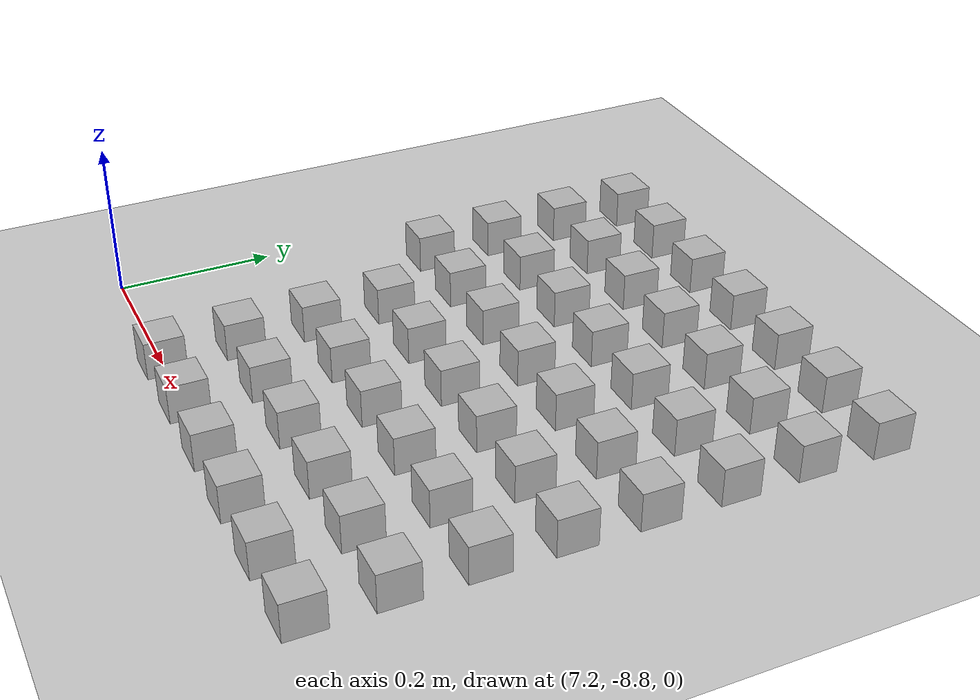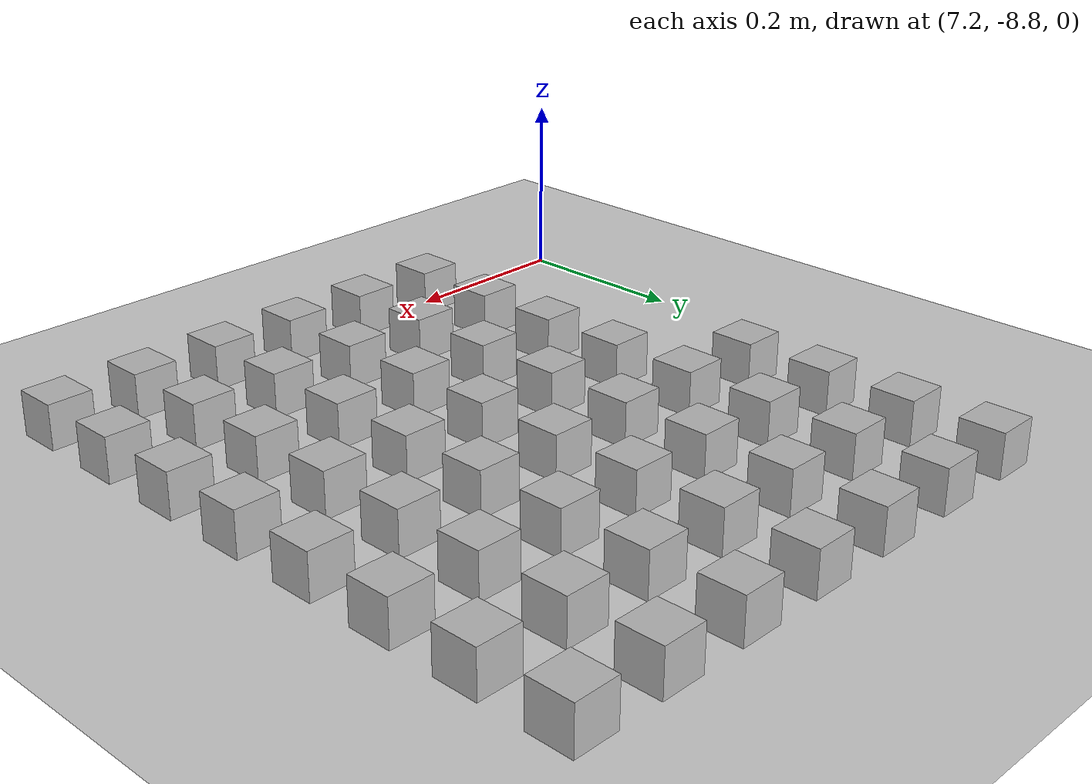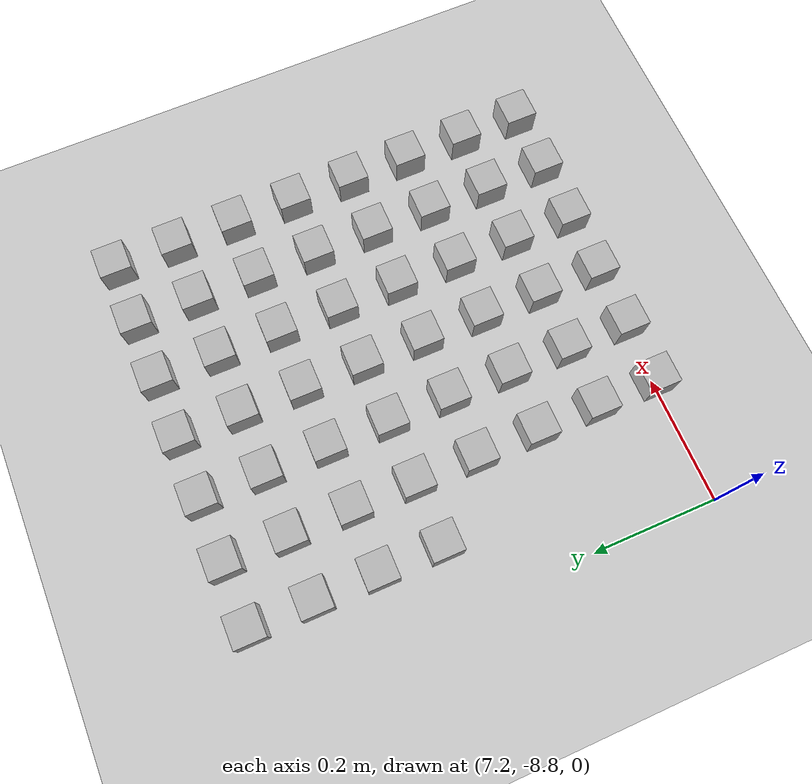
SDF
<sdf version="1.6">
 <world name="default">
  <model name="ground_plane">
   <static>1</static>
   <link name="link">
    <collision name="collision">
     <geometry><plane><normal>0 0 1</normal><size>100 100</size></plane></geometry>
     <surface><friction><ode><mu>100</mu><mu2>50</mu2></ode></friction></surface>
    </collision>
    <visual name="visual">
     <cast_shadows>0</cast_shadows>
     <geometry><plane><normal>0 0 1</normal><size>100 100</size></plane></geometry>
     <material>
      <script><uri>file://media/materials/scripts/gazebo.material</uri><name>Gazebo/Grey</name></script>
     </material>
    </visual>
   </link>
  </model>
  <model name="at130">
   <static>0</static>
   <link name="link">
    <inertial>
     <mass>0.01</mass>
     <inertia><ixx>4e-05</ixx><ixy>0</ixy><ixz>0</ixz><iyy>4e-05</iyy><iyz>0</iyz><izz>4e-05</izz></inertia>
    </inertial>
    <visual name="visual">
     <geometry><box><size>0.05 0.05 0.05</size></box></geometry>
     <material>
      <script>
       <uri>model://at0/materials/scripts</uri>
       <uri>model://at0/materials/textures</uri>
       <name>at0/Diffuse</name>
      </script>
     </material>
    </visual>
    <collision name="collision">
     <geometry><box><size>0.05 0.05 0.05</size></box></geometry>
     <surface><friction><ode><mu>0.8</mu><mu2>0.7</mu2></ode></friction></surface>
    </collision>
   </link>
   <pose>7.4 -8.8 0.025 0 -0 0</pose>
  </model>
  <model name="at131">
   <static>0</static>
   <link name="link">
    <inertial>
     <mass>0.01</mass>
     <inertia><ixx>4e-05</ixx><ixy>0</ixy><ixz>0</ixz><iyy>4e-05</iyy><iyz>0</iyz><izz>4e-05</izz></inertia>
    </inertial>
    <visual name="visual">
     <geometry><box><size>0.05 0.05 0.05</size></box></geometry>
     <material>
      <script>
       <uri>model://at0/materials/scripts</uri>
       <uri>model://at0/materials/textures</uri>
       <name>at0/Diffuse</name>
      </script>
     </material>
    </visual>
    <collision name="collision">
     <geometry><box><size>0.05 0.05 0.05</size></box></geometry>
     <surface><friction><ode><mu>0.8</mu><mu2>0.7</mu2></ode></friction></surface>
    </collision>
   </link>
   <pose>7.5 -8.8 0.025 0 -0 0</pose>
  </model>
  <model name="at132">
   <static>0</static>
   <link name="link">
    <inertial>
     <mass>0.01</mass>
     <inertia><ixx>4e-05</ixx><ixy>0</ixy><ixz>0</ixz><iyy>4e-05</iyy><iyz>0</iyz><izz>4e-05</izz></inertia>
    </inertial>
    <visual name="visual">
     <geometry><box><size>0.05 0.05 0.05</size></box></geometry>
     <material>
      <script>
       <uri>model://at0/materials/scripts</uri>
       <uri>model://at0/materials/textures</uri>
       <name>at0/Diffuse</name>
      </script>
     </material>
    </visual>
    <collision name="collision">
     <geometry><box><size>0.05 0.05 0.05</size></box></geometry>
     <surface><friction><ode><mu>0.8</mu><mu2>0.7</mu2></ode></friction></surface>
    </collision>
   </link>
   <pose>7.6 -8.8 0.025 0 -0 0</pose>
  </model>
  <model name="at133">
   <static>0</static>
   <link name="link">
    <inertial>
     <mass>0.01</mass>
     <inertia><ixx>4e-05</ixx><ixy>0</ixy><ixz>0</ixz><iyy>4e-05</iyy><iyz>0</iyz><izz>4e-05</izz></inertia>
    </inertial>
    <visual name="visual">
     <geometry><box><size>0.05 0.05 0.05</size></box></geometry>
     <material>
      <script>
       <uri>model://at0/materials/scripts</uri>
       <uri>model://at0/materials/textures</uri>
       <name>at0/Diffuse</name>
      </script>
     </material>
    </visual>
    <collision name="collision">
     <geometry><box><size>0.05 0.05 0.05</size></box></geometry>
     <surface><friction><ode><mu>0.8</mu><mu2>0.7</mu2></ode></friction></surface>
    </collision>
   </link>
   <pose>7.7 -8.8 0.025 0 -0 0</pose>
  </model>
  <model name="at134">
   <static>0</static>
   <link name="link">
    <inertial>
     <mass>0.01</mass>
     <inertia><ixx>4e-05</ixx><ixy>0</ixy><ixz>0</ixz><iyy>4e-05</iyy><iyz>0</iyz><izz>4e-05</izz></inertia>
    </inertial>
    <visual name="visual">
     <geometry><box><size>0.05 0.05 0.05</size></box></geometry>
     <material>
      <script>
       <uri>model://at0/materials/scripts</uri>
       <uri>model://at0/materials/textures</uri>
       <name>at0/Diffuse</name>
      </script>
     </material>
    </visual>
    <collision name="collision">
     <geometry><box><size>0.05 0.05 0.05</size></box></geometry>
     <surface><friction><ode><mu>0.8</mu><mu2>0.7</mu2></ode></friction></surface>
    </collision>
   </link>
   <pose>7.8 -8.8 0.025 0 -0 0</pose>
  </model>
  <model name="at135">
   <static>0</static>
   <link name="link">
    <inertial>
     <mass>0.01</mass>
     <inertia><ixx>4e-05</ixx><ixy>0</ixy><ixz>0</ixz><iyy>4e-05</iyy><iyz>0</iyz><izz>4e-05</izz></inertia>
    </inertial>
    <visual name="visual">
     <geometry><box><size>0.05 0.05 0.05</size></box></geometry>
     <material>
      <script>
       <uri>model://at0/materials/scripts</uri>
       <uri>model://at0/materials/textures</uri>
       <name>at0/Diffuse</name>
      </script>
     </material>
    </visual>
    <collision name="collision">
     <geometry><box><size>0.05 0.05 0.05</size></box></geometry>
     <surface><friction><ode><mu>0.8</mu><mu2>0.7</mu2></ode></friction></surface>
    </collision>
   </link>
   <pose>7.9 -8.8 0.025 0 -0 0</pose>
  </model>
  <model name="at138">
   <static>0</static>
   <link name="link">
    <inertial>
     <mass>0.01</mass>
     <inertia><ixx>4e-05</ixx><ixy>0</ixy><ixz>0</ixz><iyy>4e-05</iyy><iyz>0</iyz><izz>4e-05</izz></inertia>
    </inertial>
    <visual name="visual">
     <geometry><box><size>0.05 0.05 0.05</size></box></geometry>
     <material>
      <script>
       <uri>model://at0/materials/scripts</uri>
       <uri>model://at0/materials/textures</uri>
       <name>at0/Diffuse</name>
      </script>
     </material>
    </visual>
    <collision name="collision">
     <geometry><box><size>0.05 0.05 0.05</size></box></geometry>
     <surface><friction><ode><mu>0.8</mu><mu2>0.7</mu2></ode></friction></surface>
    </collision>
   </link>
   <pose>7.4 -8.7 0.025 0 -0 0</pose>
  </model>
  <model name="at139">
   <static>0</static>
   <link name="link">
    <inertial>
     <mass>0.01</mass>
     <inertia><ixx>4e-05</ixx><ixy>0</ixy><ixz>0</ixz><iyy>4e-05</iyy><iyz>0</iyz><izz>4e-05</izz></inertia>
    </inertial>
    <visual name="visual">
     <geometry><box><size>0.05 0.05 0.05</size></box></geometry>
     <material>
      <script>
       <uri>model://at0/materials/scripts</uri>
       <uri>model://at0/materials/textures</uri>
       <name>at0/Diffuse</name>
      </script>
     </material>
    </visual>
    <collision name="collision">
     <geometry><box><size>0.05 0.05 0.05</size></box></geometry>
     <surface><friction><ode><mu>0.8</mu><mu2>0.7</mu2></ode></friction></surface>
    </collision>
   </link>
   <pose>7.5 -8.7 0.025 0 -0 0</pose>
  </model>
  <model name="at140">
   <static>0</static>
   <link name="link">
    <inertial>
     <mass>0.01</mass>
     <inertia><ixx>4e-05</ixx><ixy>0</ixy><ixz>0</ixz><iyy>4e-05</iyy><iyz>0</iyz><izz>4e-05</izz></inertia>
    </inertial>
    <visual name="visual">
     <geometry><box><size>0.05 0.05 0.05</size></box></geometry>
     <material>
      <script>
       <uri>model://at0/materials/scripts</uri>
       <uri>model://at0/materials/textures</uri>
       <name>at0/Diffuse</name>
      </script>
     </material>
    </visual>
    <collision name="collision">
     <geometry><box><size>0.05 0.05 0.05</size></box></geometry>
     <surface><friction><ode><mu>0.8</mu><mu2>0.7</mu2></ode></friction></surface>
    </collision>
   </link>
   <pose>7.6 -8.7 0.025 0 -0 0</pose>
  </model>
  <model name="at141">
   <static>0</static>
   <link name="link">
    <inertial>
     <mass>0.01</mass>
     <inertia><ixx>4e-05</ixx><ixy>0</ixy><ixz>0</ixz><iyy>4e-05</iyy><iyz>0</iyz><izz>4e-05</izz></inertia>
    </inertial>
    <visual name="visual">
     <geometry><box><size>0.05 0.05 0.05</size></box></geometry>
     <material>
      <script>
       <uri>model://at0/materials/scripts</uri>
       <uri>model://at0/materials/textures</uri>
       <name>at0/Diffuse</name>
      </script>
     </material>
    </visual>
    <collision name="collision">
     <geometry><box><size>0.05 0.05 0.05</size></box></geometry>
     <surface><friction><ode><mu>0.8</mu><mu2>0.7</mu2></ode></friction></surface>
    </collision>
   </link>
   <pose>7.7 -8.7 0.025 0 -0 0</pose>
  </model>
  <model name="at142">
   <static>0</static>
   <link name="link">
    <inertial>
     <mass>0.01</mass>
     <inertia><ixx>4e-05</ixx><ixy>0</ixy><ixz>0</ixz><iyy>4e-05</iyy><iyz>0</iyz><izz>4e-05</izz></inertia>
    </inertial>
    <visual name="visual">
     <geometry><box><size>0.05 0.05 0.05</size></box></geometry>
     <material>
      <script>
       <uri>model://at0/materials/scripts</uri>
       <uri>model://at0/materials/textures</uri>
       <name>at0/Diffuse</name>
      </script>
     </material>
    </visual>
    <collision name="collision">
     <geometry><box><size>0.05 0.05 0.05</size></box></geometry>
     <surface><friction><ode><mu>0.8</mu><mu2>0.7</mu2></ode></friction></surface>
    </collision>
   </link>
   <pose>7.8 -8.7 0.025 0 -0 0</pose>
  </model>
  <model name="at143">
   <static>0</static>
   <link name="link">
    <inertial>
     <mass>0.01</mass>
     <inertia><ixx>4e-05</ixx><ixy>0</ixy><ixz>0</ixz><iyy>4e-05</iyy><iyz>0</iyz><izz>4e-05</izz></inertia>
    </inertial>
    <visual name="visual">
     <geometry><box><size>0.05 0.05 0.05</size></box></geometry>
     <material>
      <script>
       <uri>model://at0/materials/scripts</uri>
       <uri>model://at0/materials/textures</uri>
       <name>at0/Diffuse</name>
      </script>
     </material>
    </visual>
    <collision name="collision">
     <geometry><box><size>0.05 0.05 0.05</size></box></geometry>
     <surface><friction><ode><mu>0.8</mu><mu2>0.7</mu2></ode></friction></surface>
    </collision>
   </link>
   <pose>7.9 -8.7 0.025 0 -0 0</pose>
  </model>
  <model name="at146">
   <static>0</static>
   <link name="link">
    <inertial>
     <mass>0.01</mass>
     <inertia><ixx>4e-05</ixx><ixy>0</ixy><ixz>0</ixz><iyy>4e-05</iyy><iyz>0</iyz><izz>4e-05</izz></inertia>
    </inertial>
    <visual name="visual">
     <geometry><box><size>0.05 0.05 0.05</size></box></geometry>
     <material>
      <script>
       <uri>model://at0/materials/scripts</uri>
       <uri>model://at0/materials/textures</uri>
       <name>at0/Diffuse</name>
      </script>
     </material>
    </visual>
    <collision name="collision">
     <geometry><box><size>0.05 0.05 0.05</size></box></geometry>
     <surface><friction><ode><mu>0.8</mu><mu2>0.7</mu2></ode></friction></surface>
    </collision>
   </link>
   <pose>7.4 -8.6 0.025 0 -0 0</pose>
  </model>
  <model name="at147">
   <static>0</static>
   <link name="link">
    <inertial>
     <mass>0.01</mass>
     <inertia><ixx>4e-05</ixx><ixy>0</ixy><ixz>0</ixz><iyy>4e-05</iyy><iyz>0</iyz><izz>4e-05</izz></inertia>
    </inertial>
    <visual name="visual">
     <geometry><box><size>0.05 0.05 0.05</size></box></geometry>
     <material>
      <script>
       <uri>model://at0/materials/scripts</uri>
       <uri>model://at0/materials/textures</uri>
       <name>at0/Diffuse</name>
      </script>
     </material>
    </visual>
    <collision name="collision">
     <geometry><box><size>0.05 0.05 0.05</size></box></geometry>
     <surface><friction><ode><mu>0.8</mu><mu2>0.7</mu2></ode></friction></surface>
    </collision>
   </link>
   <pose>7.5 -8.6 0.025 0 -0 0</pose>
  </model>
  <model name="at148">
   <static>0</static>
   <link name="link">
    <inertial>
     <mass>0.01</mass>
     <inertia><ixx>4e-05</ixx><ixy>0</ixy><ixz>0</ixz><iyy>4e-05</iyy><iyz>0</iyz><izz>4e-05</izz></inertia>
    </inertial>
    <visual name="visual">
     <geometry><box><size>0.05 0.05 0.05</size></box></geometry>
     <material>
      <script>
       <uri>model://at0/materials/scripts</uri>
       <uri>model://at0/materials/textures</uri>
       <name>at0/Diffuse</name>
      </script>
     </material>
    </visual>
    <collision name="collision">
     <geometry><box><size>0.05 0.05 0.05</size></box></geometry>
     <surface><friction><ode><mu>0.8</mu><mu2>0.7</mu2></ode></friction></surface>
    </collision>
   </link>
   <pose>7.6 -8.6 0.025 0 -0 0</pose>
  </model>
  <model name="at149">
   <static>0</static>
   <link name="link">
    <inertial>
     <mass>0.01</mass>
     <inertia><ixx>4e-05</ixx><ixy>0</ixy><ixz>0</ixz><iyy>4e-05</iyy><iyz>0</iyz><izz>4e-05</izz></inertia>
    </inertial>
    <visual name="visual">
     <geometry><box><size>0.05 0.05 0.05</size></box></geometry>
     <material>
      <script>
       <uri>model://at0/materials/scripts</uri>
       <uri>model://at0/materials/textures</uri>
       <name>at0/Diffuse</name>
      </script>
     </material>
    </visual>
    <collision name="collision">
     <geometry><box><size>0.05 0.05 0.05</size></box></geometry>
     <surface><friction><ode><mu>0.8</mu><mu2>0.7</mu2></ode></friction></surface>
    </collision>
   </link>
   <pose>7.7 -8.6 0.025 0 -0 0</pose>
  </model>
  <model name="at150">
   <static>0</static>
   <link name="link">
    <inertial>
     <mass>0.01</mass>
     <inertia><ixx>4e-05</ixx><ixy>0</ixy><ixz>0</ixz><iyy>4e-05</iyy><iyz>0</iyz><izz>4e-05</izz></inertia>
    </inertial>
    <visual name="visual">
     <geometry><box><size>0.05 0.05 0.05</size></box></geometry>
     <material>
      <script>
       <uri>model://at0/materials/scripts</uri>
       <uri>model://at0/materials/textures</uri>
       <name>at0/Diffuse</name>
      </script>
     </material>
    </visual>
    <collision name="collision">
     <geometry><box><size>0.05 0.05 0.05</size></box></geometry>
     <surface><friction><ode><mu>0.8</mu><mu2>0.7</mu2></ode></friction></surface>
    </collision>
   </link>
   <pose>7.8 -8.6 0.025 0 -0 0</pose>
  </model>
  <model name="at151">
   <static>0</static>
   <link name="link">
    <inertial>
     <mass>0.01</mass>
     <inertia><ixx>4e-05</ixx><ixy>0</ixy><ixz>0</ixz><iyy>4e-05</iyy><iyz>0</iyz><izz>4e-05</izz></inertia>
    </inertial>
    <visual name="visual">
     <geometry><box><size>0.05 0.05 0.05</size></box></geometry>
     <material>
      <script>
       <uri>model://at0/materials/scripts</uri>
       <uri>model://at0/materials/textures</uri>
       <name>at0/Diffuse</name>
      </script>
     </material>
    </visual>
    <collision name="collision">
     <geometry><box><size>0.05 0.05 0.05</size></box></geometry>
     <surface><friction><ode><mu>0.8</mu><mu2>0.7</mu2></ode></friction></surface>
    </collision>
   </link>
   <pose>7.9 -8.6 0.025 0 -0 0</pose>
  </model>
  <model name="at154">
   <static>0</static>
   <link name="link">
    <inertial>
     <mass>0.01</mass>
     <inertia><ixx>4e-05</ixx><ixy>0</ixy><ixz>0</ixz><iyy>4e-05</iyy><iyz>0</iyz><izz>4e-05</izz></inertia>
    </inertial>
    <visual name="visual">
     <geometry><box><size>0.05 0.05 0.05</size></box></geometry>
     <material>
      <script>
       <uri>model://at0/materials/scripts</uri>
       <uri>model://at0/materials/textures</uri>
       <name>at0/Diffuse</name>
      </script>
     </material>
    </visual>
    <collision name="collision">
     <geometry><box><size>0.05 0.05 0.05</size></box></geometry>
     <surface><friction><ode><mu>0.8</mu><mu2>0.7</mu2></ode></friction></surface>
    </collision>
   </link>
   <pose>7.4 -8.5 0.025 0 -0 0</pose>
  </model>
  <model name="at155">
   <static>0</static>
   <link name="link">
    <inertial>
     <mass>0.01</mass>
     <inertia><ixx>4e-05</ixx><ixy>0</ixy><ixz>0</ixz><iyy>4e-05</iyy><iyz>0</iyz><izz>4e-05</izz></inertia>
    </inertial>
    <visual name="visual">
     <geometry><box><size>0.05 0.05 0.05</size></box></geometry>
     <material>
      <script>
       <uri>model://at0/materials/scripts</uri>
       <uri>model://at0/materials/textures</uri>
       <name>at0/Diffuse</name>
      </script>
     </material>
    </visual>
    <collision name="collision">
     <geometry><box><size>0.05 0.05 0.05</size></box></geometry>
     <surface><friction><ode><mu>0.8</mu><mu2>0.7</mu2></ode></friction></surface>
    </collision>
   </link>
   <pose>7.5 -8.5 0.025 0 -0 0</pose>
  </model>
  <model name="at156">
   <static>0</static>
   <link name="link">
    <inertial>
     <mass>0.01</mass>
     <inertia><ixx>4e-05</ixx><ixy>0</ixy><ixz>0</ixz><iyy>4e-05</iyy><iyz>0</iyz><izz>4e-05</izz></inertia>
    </inertial>
    <visual name="visual">
     <geometry><box><size>0.05 0.05 0.05</size></box></geometry>
     <material>
      <script>
       <uri>model://at0/materials/scripts</uri>
       <uri>model://at0/materials/textures</uri>
       <name>at0/Diffuse</name>
      </script>
     </material>
    </visual>
    <collision name="collision">
     <geometry><box><size>0.05 0.05 0.05</size></box></geometry>
     <surface><friction><ode><mu>0.8</mu><mu2>0.7</mu2></ode></friction></surface>
    </collision>
   </link>
   <pose>7.6 -8.5 0.025 0 -0 0</pose>
  </model>
  <model name="at157">
   <static>0</static>
   <link name="link">
    <inertial>
     <mass>0.01</mass>
     <inertia><ixx>4e-05</ixx><ixy>0</ixy><ixz>0</ixz><iyy>4e-05</iyy><iyz>0</iyz><izz>4e-05</izz></inertia>
    </inertial>
    <visual name="visual">
     <geometry><box><size>0.05 0.05 0.05</size></box></geometry>
     <material>
      <script>
       <uri>model://at0/materials/scripts</uri>
       <uri>model://at0/materials/textures</uri>
       <name>at0/Diffuse</name>
      </script>
     </material>
    </visual>
    <collision name="collision">
     <geometry><box><size>0.05 0.05 0.05</size></box></geometry>
     <surface><friction><ode><mu>0.8</mu><mu2>0.7</mu2></ode></friction></surface>
    </collision>
   </link>
   <pose>7.7 -8.5 0.025 0 -0 0</pose>
  </model>
  <model name="at158">
   <static>0</static>
   <link name="link">
    <inertial>
     <mass>0.01</mass>
     <inertia><ixx>4e-05</ixx><ixy>0</ixy><ixz>0</ixz><iyy>4e-05</iyy><iyz>0</iyz><izz>4e-05</izz></inertia>
    </inertial>
    <visual name="visual">
     <geometry><box><size>0.05 0.05 0.05</size></box></geometry>
     <material>
      <script>
       <uri>model://at0/materials/scripts</uri>
       <uri>model://at0/materials/textures</uri>
       <name>at0/Diffuse</name>
      </script>
     </material>
    </visual>
    <collision name="collision">
     <geometry><box><size>0.05 0.05 0.05</size></box></geometry>
     <surface><friction><ode><mu>0.8</mu><mu2>0.7</mu2></ode></friction></surface>
    </collision>
   </link>
   <pose>7.8 -8.5 0.025 0 -0 0</pose>
  </model>
  <model name="at159">
   <static>0</static>
   <link name="link">
    <inertial>
     <mass>0.01</mass>
     <inertia><ixx>4e-05</ixx><ixy>0</ixy><ixz>0</ixz><iyy>4e-05</iyy><iyz>0</iyz><izz>4e-05</izz></inertia>
    </inertial>
    <visual name="visual">
     <geometry><box><size>0.05 0.05 0.05</size></box></geometry>
     <material>
      <script>
       <uri>model://at0/materials/scripts</uri>
       <uri>model://at0/materials/textures</uri>
       <name>at0/Diffuse</name>
      </script>
     </material>
    </visual>
    <collision name="collision">
     <geometry><box><size>0.05 0.05 0.05</size></box></geometry>
     <surface><friction><ode><mu>0.8</mu><mu2>0.7</mu2></ode></friction></surface>
    </collision>
   </link>
   <pose>7.9 -8.5 0.025 0 -0 0</pose>
  </model>
  <model name="at161">
   <static>0</static>
   <link name="link">
    <inertial>
     <mass>0.01</mass>
     <inertia><ixx>4e-05</ixx><ixy>0</ixy><ixz>0</ixz><iyy>4e-05</iyy><iyz>0</iyz><izz>4e-05</izz></inertia>
    </inertial>
    <visual name="visual">
     <geometry><box><size>0.05 0.05 0.05</size></box></geometry>
     <material>
      <script>
       <uri>model://at0/materials/scripts</uri>
       <uri>model://at0/materials/textures</uri>
       <name>at0/Diffuse</name>
      </script>
     </material>
    </visual>
    <collision name="collision">
     <geometry><box><size>0.05 0.05 0.05</size></box></geometry>
     <surface><friction><ode><mu>0.8</mu><mu2>0.7</mu2></ode></friction></surface>
    </collision>
   </link>
   <pose>7.3 -8.4 0.025 0 -0 0</pose>
  </model>
  <model name="at162">
   <static>0</static>
   <link name="link">
    <inertial>
     <mass>0.01</mass>
     <inertia><ixx>4e-05</ixx><ixy>0</ixy><ixz>0</ixz><iyy>4e-05</iyy><iyz>0</iyz><izz>4e-05</izz></inertia>
    </inertial>
    <visual name="visual">
     <geometry><box><size>0.05 0.05 0.05</size></box></geometry>
     <material>
      <script>
       <uri>model://at0/materials/scripts</uri>
       <uri>model://at0/materials/textures</uri>
       <name>at0/Diffuse</name>
      </script>
     </material>
    </visual>
    <collision name="collision">
     <geometry><box><size>0.05 0.05 0.05</size></box></geometry>
     <surface><friction><ode><mu>0.8</mu><mu2>0.7</mu2></ode></friction></surface>
    </collision>
   </link>
   <pose>7.4 -8.4 0.025 0 -0 0</pose>
  </model>
  <model name="at163">
   <static>0</static>
   <link name="link">
    <inertial>
     <mass>0.01</mass>
     <inertia><ixx>4e-05</ixx><ixy>0</ixy><ixz>0</ixz><iyy>4e-05</iyy><iyz>0</iyz><izz>4e-05</izz></inertia>
    </inertial>
    <visual name="visual">
     <geometry><box><size>0.05 0.05 0.05</size></box></geometry>
     <material>
      <script>
       <uri>model://at0/materials/scripts</uri>
       <uri>model://at0/materials/textures</uri>
       <name>at0/Diffuse</name>
      </script>
     </material>
    </visual>
    <collision name="collision">
     <geometry><box><size>0.05 0.05 0.05</size></box></geometry>
     <surface><friction><ode><mu>0.8</mu><mu2>0.7</mu2></ode></friction></surface>
    </collision>
   </link>
   <pose>7.5 -8.4 0.025 0 -0 0</pose>
  </model>
  <model name="at164">
   <static>0</static>
   <link name="link">
    <inertial>
     <mass>0.01</mass>
     <inertia><ixx>4e-05</ixx><ixy>0</ixy><ixz>0</ixz><iyy>4e-05</iyy><iyz>0</iyz><izz>4e-05</izz></inertia>
    </inertial>
    <visual name="visual">
     <geometry><box><size>0.05 0.05 0.05</size></box></geometry>
     <material>
      <script>
       <uri>model://at0/materials/scripts</uri>
       <uri>model://at0/materials/textures</uri>
       <name>at0/Diffuse</name>
      </script>
     </material>
    </visual>
    <collision name="collision">
     <geometry><box><size>0.05 0.05 0.05</size></box></geometry>
     <surface><friction><ode><mu>0.8</mu><mu2>0.7</mu2></ode></friction></surface>
    </collision>
   </link>
   <pose>7.6 -8.4 0.025 0 -0 0</pose>
  </model>
  <model name="at165">
   <static>0</static>
   <link name="link">
    <inertial>
     <mass>0.01</mass>
     <inertia><ixx>4e-05</ixx><ixy>0</ixy><ixz>0</ixz><iyy>4e-05</iyy><iyz>0</iyz><izz>4e-05</izz></inertia>
    </inertial>
    <visual name="visual">
     <geometry><box><size>0.05 0.05 0.05</size></box></geometry>
     <material>
      <script>
       <uri>model://at0/materials/scripts</uri>
       <uri>model://at0/materials/textures</uri>
       <name>at0/Diffuse</name>
      </script>
     </material>
    </visual>
    <collision name="collision">
     <geometry><box><size>0.05 0.05 0.05</size></box></geometry>
     <surface><friction><ode><mu>0.8</mu><mu2>0.7</mu2></ode></friction></surface>
    </collision>
   </link>
   <pose>7.7 -8.4 0.025 0 -0 0</pose>
  </model>
  <model name="at166">
   <static>0</static>
   <link name="link">
    <inertial>
     <mass>0.01</mass>
     <inertia><ixx>4e-05</ixx><ixy>0</ixy><ixz>0</ixz><iyy>4e-05</iyy><iyz>0</iyz><izz>4e-05</izz></inertia>
    </inertial>
    <visual name="visual">
     <geometry><box><size>0.05 0.05 0.05</size></box></geometry>
     <material>
      <script>
       <uri>model://at0/materials/scripts</uri>
       <uri>model://at0/materials/textures</uri>
       <name>at0/Diffuse</name>
      </script>
     </material>
    </visual>
    <collision name="collision">
     <geometry><box><size>0.05 0.05 0.05</size></box></geometry>
     <surface><friction><ode><mu>0.8</mu><mu2>0.7</mu2></ode></friction></surface>
    </collision>
   </link>
   <pose>7.8 -8.4 0.025 0 -0 0</pose>
  </model>
  <model name="at167">
   <static>0</static>
   <link name="link">
    <inertial>
     <mass>0.01</mass>
     <inertia><ixx>4e-05</ixx><ixy>0</ixy><ixz>0</ixz><iyy>4e-05</iyy><iyz>0</iyz><izz>4e-05</izz></inertia>
    </inertial>
    <visual name="visual">
     <geometry><box><size>0.05 0.05 0.05</size></box></geometry>
     <material>
      <script>
       <uri>model://at0/materials/scripts</uri>
       <uri>model://at0/materials/textures</uri>
       <name>at0/Diffuse</name>
      </script>
     </material>
    </visual>
    <collision name="collision">
     <geometry><box><size>0.05 0.05 0.05</size></box></geometry>
     <surface><friction><ode><mu>0.8</mu><mu2>0.7</mu2></ode></friction></surface>
    </collision>
   </link>
   <pose>7.9 -8.4 0.025 0 -0 0</pose>
  </model>
  <model name="at169">
   <static>0</static>
   <link name="link">
    <inertial>
     <mass>0.01</mass>
     <inertia><ixx>4e-05</ixx><ixy>0</ixy><ixz>0</ixz><iyy>4e-05</iyy><iyz>0</iyz><izz>4e-05</izz></inertia>
    </inertial>
    <visual name="visual">
     <geometry><box><size>0.05 0.05 0.05</size></box></geometry>
     <material>
      <script>
       <uri>model://at0/materials/scripts</uri>
       <uri>model://at0/materials/textures</uri>
       <name>at0/Diffuse</name>
      </script>
     </material>
    </visual>
    <collision name="collision">
     <geometry><box><size>0.05 0.05 0.05</size></box></geometry>
     <surface><friction><ode><mu>0.8</mu><mu2>0.7</mu2></ode></friction></surface>
    </collision>
   </link>
   <pose>7.3 -8.3 0.025 0 -0 0</pose>
  </model>
  <model name="at170">
   <static>0</static>
   <link name="link">
    <inertial>
     <mass>0.01</mass>
     <inertia><ixx>4e-05</ixx><ixy>0</ixy><ixz>0</ixz><iyy>4e-05</iyy><iyz>0</iyz><izz>4e-05</izz></inertia>
    </inertial>
    <visual name="visual">
     <geometry><box><size>0.05 0.05 0.05</size></box></geometry>
     <material>
      <script>
       <uri>model://at0/materials/scripts</uri>
       <uri>model://at0/materials/textures</uri>
       <name>at0/Diffuse</name>
      </script>
     </material>
    </visual>
    <collision name="collision">
     <geometry><box><size>0.05 0.05 0.05</size></box></geometry>
     <surface><friction><ode><mu>0.8</mu><mu2>0.7</mu2></ode></friction></surface>
    </collision>
   </link>
   <pose>7.4 -8.3 0.025 0 -0 0</pose>
  </model>
  <model name="at171">
   <static>0</static>
   <link name="link">
    <inertial>
     <mass>0.01</mass>
     <inertia><ixx>4e-05</ixx><ixy>0</ixy><ixz>0</ixz><iyy>4e-05</iyy><iyz>0</iyz><izz>4e-05</izz></inertia>
    </inertial>
    <visual name="visual">
     <geometry><box><size>0.05 0.05 0.05</size></box></geometry>
     <material>
      <script>
       <uri>model://at0/materials/scripts</uri>
       <uri>model://at0/materials/textures</uri>
       <name>at0/Diffuse</name>
      </script>
     </material>
    </visual>
    <collision name="collision">
     <geometry><box><size>0.05 0.05 0.05</size></box></geometry>
     <surface><friction><ode><mu>0.8</mu><mu2>0.7</mu2></ode></friction></surface>
    </collision>
   </link>
   <pose>7.5 -8.3 0.025 0 -0 0</pose>
  </model>
  <model name="at172">
   <static>0</static>
   <link name="link">
    <inertial>
     <mass>0.01</mass>
     <inertia><ixx>4e-05</ixx><ixy>0</ixy><ixz>0</ixz><iyy>4e-05</iyy><iyz>0</iyz><izz>4e-05</izz></inertia>
    </inertial>
    <visual name="visual">
     <geometry><box><size>0.05 0.05 0.05</size></box></geometry>
     <material>
      <script>
       <uri>model://at0/materials/scripts</uri>
       <uri>model://at0/materials/textures</uri>
       <name>at0/Diffuse</name>
      </script>
     </material>
    </visual>
    <collision name="collision">
     <geometry><box><size>0.05 0.05 0.05</size></box></geometry>
     <surface><friction><ode><mu>0.8</mu><mu2>0.7</mu2></ode></friction></surface>
    </collision>
   </link>
   <pose>7.6 -8.3 0.025 0 -0 0</pose>
  </model>
  <model name="at173">
   <static>0</static>
   <link name="link">
    <inertial>
     <mass>0.01</mass>
     <inertia><ixx>4e-05</ixx><ixy>0</ixy><ixz>0</ixz><iyy>4e-05</iyy><iyz>0</iyz><izz>4e-05</izz></inertia>
    </inertial>
    <visual name="visual">
     <geometry><box><size>0.05 0.05 0.05</size></box></geometry>
     <material>
      <script>
       <uri>model://at0/materials/scripts</uri>
       <uri>model://at0/materials/textures</uri>
       <name>at0/Diffuse</name>
      </script>
     </material>
    </visual>
    <collision name="collision">
     <geometry><box><size>0.05 0.05 0.05</size></box></geometry>
     <surface><friction><ode><mu>0.8</mu><mu2>0.7</mu2></ode></friction></surface>
    </collision>
   </link>
   <pose>7.7 -8.3 0.025 0 -0 0</pose>
  </model>
  <model name="at174">
   <static>0</static>
   <link name="link">
    <inertial>
     <mass>0.01</mass>
     <inertia><ixx>4e-05</ixx><ixy>0</ixy><ixz>0</ixz><iyy>4e-05</iyy><iyz>0</iyz><izz>4e-05</izz></inertia>
    </inertial>
    <visual name="visual">
     <geometry><box><size>0.05 0.05 0.05</size></box></geometry>
     <material>
      <script>
       <uri>model://at0/materials/scripts</uri>
       <uri>model://at0/materials/textures</uri>
       <name>at0/Diffuse</name>
      </script>
     </material>
    </visual>
    <collision name="collision">
     <geometry><box><size>0.05 0.05 0.05</size></box></geometry>
     <surface><friction><ode><mu>0.8</mu><mu2>0.7</mu2></ode></friction></surface>
    </collision>
   </link>
   <pose>7.8 -8.3 0.025 0 -0 0</pose>
  </model>
  <model name="at175">
   <static>0</static>
   <link name="link">
    <inertial>
     <mass>0.01</mass>
     <inertia><ixx>4e-05</ixx><ixy>0</ixy><ixz>0</ixz><iyy>4e-05</iyy><iyz>0</iyz><izz>4e-05</izz></inertia>
    </inertial>
    <visual name="visual">
     <geometry><box><size>0.05 0.05 0.05</size></box></geometry>
     <material>
      <script>
       <uri>model://at0/materials/scripts</uri>
       <uri>model://at0/materials/textures</uri>
       <name>at0/Diffuse</name>
      </script>
     </material>
    </visual>
    <collision name="collision">
     <geometry><box><size>0.05 0.05 0.05</size></box></geometry>
     <surface><friction><ode><mu>0.8</mu><mu2>0.7</mu2></ode></friction></surface>
    </collision>
   </link>
   <pose>7.9 -8.3 0.025 0 -0 0</pose>
  </model>
  <model name="at177">
   <static>0</static>
   <link name="link">
    <inertial>
     <mass>0.01</mass>
     <inertia><ixx>4e-05</ixx><ixy>0</ixy><ixz>0</ixz><iyy>4e-05</iyy><iyz>0</iyz><izz>4e-05</izz></inertia>
    </inertial>
    <visual name="visual">
     <geometry><box><size>0.05 0.05 0.05</size></box></geometry>
     <material>
      <script>
       <uri>model://at0/materials/scripts</uri>
       <uri>model://at0/materials/textures</uri>
       <name>at0/Diffuse</name>
      </script>
     </material>
    </visual>
    <collision name="collision">
     <geometry><box><size>0.05 0.05 0.05</size></box></geometry>
     <surface><friction><ode><mu>0.8</mu><mu2>0.7</mu2></ode></friction></surface>
    </collision>
   </link>
   <pose>7.3 -8.2 0.025 0 -0 0</pose>
  </model>
  <model name="at178">
   <static>0</static>
   <link name="link">
    <inertial>
     <mass>0.01</mass>
     <inertia><ixx>4e-05</ixx><ixy>0</ixy><ixz>0</ixz><iyy>4e-05</iyy><iyz>0</iyz><izz>4e-05</izz></inertia>
    </inertial>
    <visual name="visual">
     <geometry><box><size>0.05 0.05 0.05</size></box></geometry>
     <material>
      <script>
       <uri>model://at0/materials/scripts</uri>
       <uri>model://at0/materials/textures</uri>
       <name>at0/Diffuse</name>
      </script>
     </material>
    </visual>
    <collision name="collision">
     <geometry><box><size>0.05 0.05 0.05</size></box></geometry>
     <surface><friction><ode><mu>0.8</mu><mu2>0.7</mu2></ode></friction></surface>
    </collision>
   </link>
   <pose>7.4 -8.2 0.025 0 -0 0</pose>
  </model>
  <model name="at179">
   <static>0</static>
   <link name="link">
    <inertial>
     <mass>0.01</mass>
     <inertia><ixx>4e-05</ixx><ixy>0</ixy><ixz>0</ixz><iyy>4e-05</iyy><iyz>0</iyz><izz>4e-05</izz></inertia>
    </inertial>
    <visual name="visual">
     <geometry><box><size>0.05 0.05 0.05</size></box></geometry>
     <material>
      <script>
       <uri>model://at0/materials/scripts</uri>
       <uri>model://at0/materials/textures</uri>
       <name>at0/Diffuse</name>
      </script>
     </material>
    </visual>
    <collision name="collision">
     <geometry><box><size>0.05 0.05 0.05</size></box></geometry>
     <surface><friction><ode><mu>0.8</mu><mu2>0.7</mu2></ode></friction></surface>
    </collision>
   </link>
   <pose>7.5 -8.2 0.025 0 -0 0</pose>
  </model>
  <model name="at180">
   <static>0</static>
   <link name="link">
    <inertial>
     <mass>0.01</mass>
     <inertia><ixx>4e-05</ixx><ixy>0</ixy><ixz>0</ixz><iyy>4e-05</iyy><iyz>0</iyz><izz>4e-05</izz></inertia>
    </inertial>
    <visual name="visual">
     <geometry><box><size>0.05 0.05 0.05</size></box></geometry>
     <material>
      <script>
       <uri>model://at0/materials/scripts</uri>
       <uri>model://at0/materials/textures</uri>
       <name>at0/Diffuse</name>
      </script>
     </material>
    </visual>
    <collision name="collision">
     <geometry><box><size>0.05 0.05 0.05</size></box></geometry>
     <surface><friction><ode><mu>0.8</mu><mu2>0.7</mu2></ode></friction></surface>
    </collision>
   </link>
   <pose>7.6 -8.2 0.025 0 -0 0</pose>
  </model>
  <model name="at181">
   <static>0</static>
   <link name="link">
    <inertial>
     <mass>0.01</mass>
     <inertia><ixx>4e-05</ixx><ixy>0</ixy><ixz>0</ixz><iyy>4e-05</iyy><iyz>0</iyz><izz>4e-05</izz></inertia>
    </inertial>
    <visual name="visual">
     <geometry><box><size>0.05 0.05 0.05</size></box></geometry>
     <material>
      <script>
       <uri>model://at0/materials/scripts</uri>
       <uri>model://at0/materials/textures</uri>
       <name>at0/Diffuse</name>
      </script>
     </material>
    </visual>
    <collision name="collision">
     <geometry><box><size>0.05 0.05 0.05</size></box></geometry>
     <surface><friction><ode><mu>0.8</mu><mu2>0.7</mu2></ode></friction></surface>
    </collision>
   </link>
   <pose>7.7 -8.2 0.025 0 -0 0</pose>
  </model>
  <model name="at182">
   <static>0</static>
   <link name="link">
    <inertial>
     <mass>0.01</mass>
     <inertia><ixx>4e-05</ixx><ixy>0</ixy><ixz>0</ixz><iyy>4e-05</iyy><iyz>0</iyz><izz>4e-05</izz></inertia>
    </inertial>
    <visual name="visual">
     <geometry><box><size>0.05 0.05 0.05</size></box></geometry>
     <material>
      <script>
       <uri>model://at0/materials/scripts</uri>
       <uri>model://at0/materials/textures</uri>
       <name>at0/Diffuse</name>
      </script>
     </material>
    </visual>
    <collision name="collision">
     <geometry><box><size>0.05 0.05 0.05</size></box></geometry>
     <surface><friction><ode><mu>0.8</mu><mu2>0.7</mu2></ode></friction></surface>
    </collision>
   </link>
   <pose>7.8 -8.2 0.025 0 -0 0</pose>
  </model>
  <model name="at183">
   <static>0</static>
   <link name="link">
    <inertial>
     <mass>0.01</mass>
     <inertia><ixx>4e-05</ixx><ixy>0</ixy><ixz>0</ixz><iyy>4e-05</iyy><iyz>0</iyz><izz>4e-05</izz></inertia>
    </inertial>
    <visual name="visual">
     <geometry><box><size>0.05 0.05 0.05</size></box></geometry>
     <material>
      <script>
       <uri>model://at0/materials/scripts</uri>
       <uri>model://at0/materials/textures</uri>
       <name>at0/Diffuse</name>
      </script>
     </material>
    </visual>
    <collision name="collision">
     <geometry><box><size>0.05 0.05 0.05</size></box></geometry>
     <surface><friction><ode><mu>0.8</mu><mu2>0.7</mu2></ode></friction></surface>
    </collision>
   </link>
   <pose>7.9 -8.2 0.025 0 -0 0</pose>
  </model>
  <model name="at185">
   <static>0</static>
   <link name="link">
    <inertial>
     <mass>0.01</mass>
     <inertia><ixx>4e-05</ixx><ixy>0</ixy><ixz>0</ixz><iyy>4e-05</iyy><iyz>0</iyz><izz>4e-05</izz></inertia>
    </inertial>
    <visual name="visual">
     <geometry><box><size>0.05 0.05 0.05</size></box></geometry>
     <material>
      <script>
       <uri>model://at0/materials/scripts</uri>
       <uri>model://at0/materials/textures</uri>
       <name>at0/Diffuse</name>
      </script>
     </material>
    </visual>
    <collision name="collision">
     <geometry><box><size>0.05 0.05 0.05</size></box></geometry>
     <surface><friction><ode><mu>0.8</mu><mu2>0.7</mu2></ode></friction></surface>
    </collision>
   </link>
   <pose>7.3 -8.1 0.025 0 -0 0</pose>
  </model>
  <model name="at186">
   <static>0</static>
   <link name="link">
    <inertial>
     <mass>0.01</mass>
     <inertia><ixx>4e-05</ixx><ixy>0</ixy><ixz>0</ixz><iyy>4e-05</iyy><iyz>0</iyz><izz>4e-05</izz></inertia>
    </inertial>
    <visual name="visual">
     <geometry><box><size>0.05 0.05 0.05</size></box></geometry>
     <material>
      <script>
       <uri>model://at0/materials/scripts</uri>
       <uri>model://at0/materials/textures</uri>
       <name>at0/Diffuse</name>
      </script>
     </material>
    </visual>
    <collision name="collision">
     <geometry><box><size>0.05 0.05 0.05</size></box></geometry>
     <surface><friction><ode><mu>0.8</mu><mu2>0.7</mu2></ode></friction></surface>
    </collision>
   </link>
   <pose>7.4 -8.1 0.025 0 -0 0</pose>
  </model>
  <model name="at187">
   <static>0</static>
   <link name="link">
    <inertial>
     <mass>0.01</mass>
     <inertia><ixx>4e-05</ixx><ixy>0</ixy><ixz>0</ixz><iyy>4e-05</iyy><iyz>0</iyz><izz>4e-05</izz></inertia>
    </inertial>
    <visual name="visual">
     <geometry><box><size>0.05 0.05 0.05</size></box></geometry>
     <material>
      <script>
       <uri>model://at0/materials/scripts</uri>
       <uri>model://at0/materials/textures</uri>
       <name>at0/Diffuse</name>
      </script>
     </material>
    </visual>
    <collision name="collision">
     <geometry><box><size>0.05 0.05 0.05</size></box></geometry>
     <surface><friction><ode><mu>0.8</mu><mu2>0.7</mu2></ode></friction></surface>
    </collision>
   </link>
   <pose>7.5 -8.1 0.025 0 -0 0</pose>
  </model>
  <model name="at188">
   <static>0</static>
   <link name="link">
    <inertial>
     <mass>0.01</mass>
     <inertia><ixx>4e-05</ixx><ixy>0</ixy><ixz>0</ixz><iyy>4e-05</iyy><iyz>0</iyz><izz>4e-05</izz></inertia>
    </inertial>
    <visual name="visual">
     <geometry><box><size>0.05 0.05 0.05</size></box></geometry>
     <material>
      <script>
       <uri>model://at0/materials/scripts</uri>
       <uri>model://at0/materials/textures</uri>
       <name>at0/Diffuse</name>
      </script>
     </material>
    </visual>
    <collision name="collision">
     <geometry><box><size>0.05 0.05 0.05</size></box></geometry>
     <surface><friction><ode><mu>0.8</mu><mu2>0.7</mu2></ode></friction></surface>
    </collision>
   </link>
   <pose>7.6 -8.1 0.025 0 -0 0</pose>
  </model>
  <model name="at189">
   <static>0</static>
   <link name="link">
    <inertial>
     <mass>0.01</mass>
     <inertia><ixx>4e-05</ixx><ixy>0</ixy><ixz>0</ixz><iyy>4e-05</iyy><iyz>0</iyz><izz>4e-05</izz></inertia>
    </inertial>
    <visual name="visual">
     <geometry><box><size>0.05 0.05 0.05</size></box></geometry>
     <material>
      <script>
       <uri>model://at0/materials/scripts</uri>
       <uri>model://at0/materials/textures</uri>
       <name>at0/Diffuse</name>
      </script>
     </material>
    </visual>
    <collision name="collision">
     <geometry><box><size>0.05 0.05 0.05</size></box></geometry>
     <surface><friction><ode><mu>0.8</mu><mu2>0.7</mu2></ode></friction></surface>
    </collision>
   </link>
   <pose>7.7 -8.1 0.025 0 -0 0</pose>
  </model>
  <model name="at190">
   <static>0</static>
   <link name="link">
    <inertial>
     <mass>0.01</mass>
     <inertia><ixx>4e-05</ixx><ixy>0</ixy><ixz>0</ixz><iyy>4e-05</iyy><iyz>0</iyz><izz>4e-05</izz></inertia>
    </inertial>
    <visual name="visual">
     <geometry><box><size>0.05 0.05 0.05</size></box></geometry>
     <material>
      <script>
       <uri>model://at0/materials/scripts</uri>
       <uri>model://at0/materials/textures</uri>
       <name>at0/Diffuse</name>
      </script>
     </material>
    </visual>
    <collision name="collision">
     <geometry><box><size>0.05 0.05 0.05</size></box></geometry>
     <surface><friction><ode><mu>0.8</mu><mu2>0.7</mu2></ode></friction></surface>
    </collision>
   </link>
   <pose>7.8 -8.1 0.025 0 -0 0</pose>
  </model>
  <model name="at191">
   <static>0</static>
   <link name="link">
    <inertial>
     <mass>0.01</mass>
     <inertia><ixx>4e-05</ixx><ixy>0</ixy><ixz>0</ixz><iyy>4e-05</iyy><iyz>0</iyz><izz>4e-05</izz></inertia>
    </inertial>
    <visual name="visual">
     <geometry><box><size>0.05 0.05 0.05</size></box></geometry>
     <material>
      <script>
       <uri>model://at0/materials/scripts</uri>
       <uri>model://at0/materials/textures</uri>
       <name>at0/Diffuse</name>
      </script>
     </material>
    </visual>
    <collision name="collision">
     <geometry><box><size>0.05 0.05 0.05</size></box></geometry>
     <surface><friction><ode><mu>0.8</mu><mu2>0.7</mu2></ode></friction></surface>
    </collision>
   </link>
   <pose>7.9 -8.1 0.025 0 -0 0</pose>
  </model>
 </world>
</sdf>
